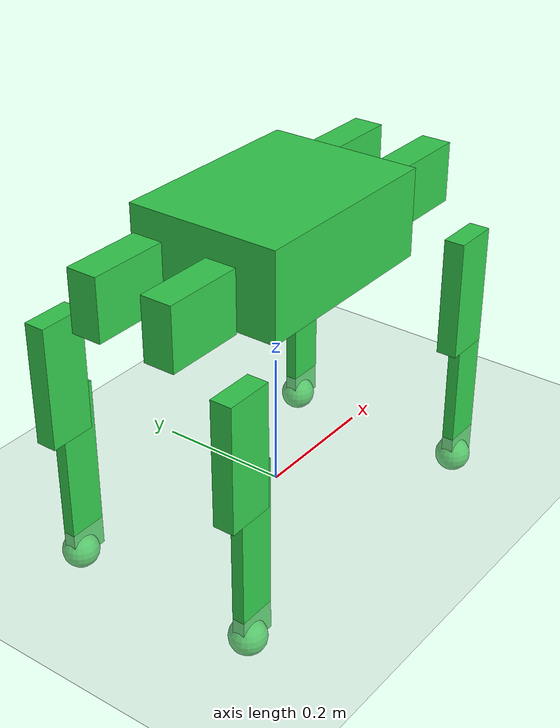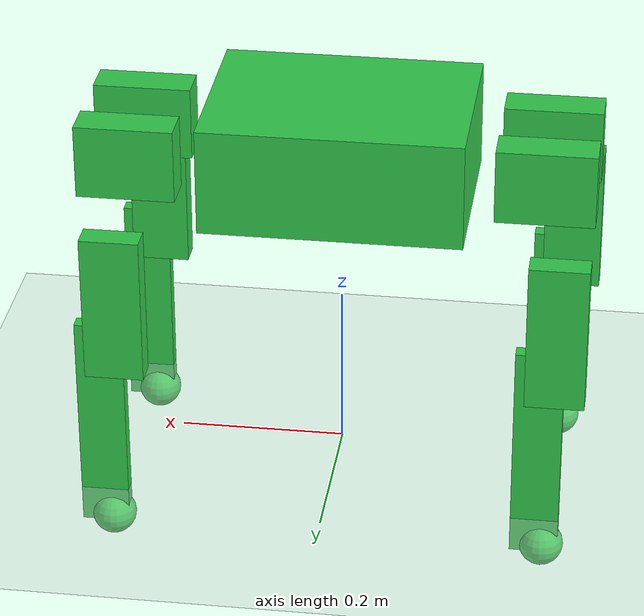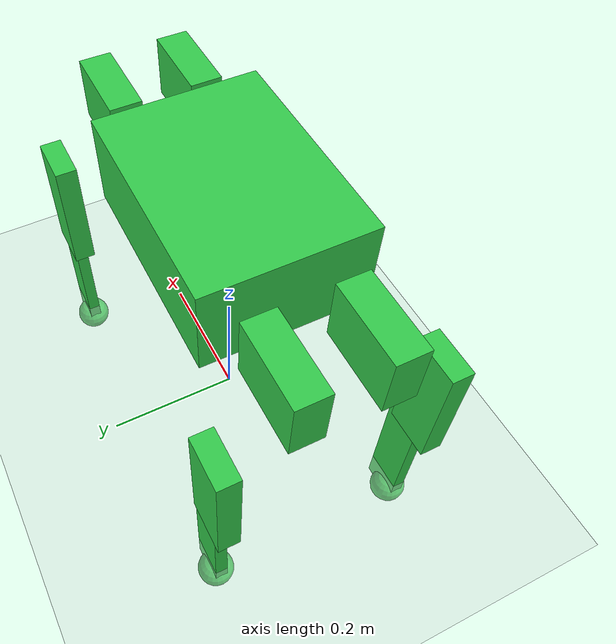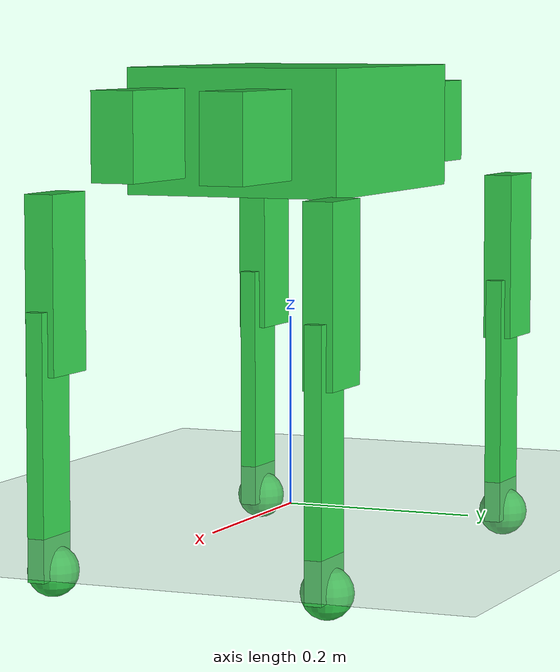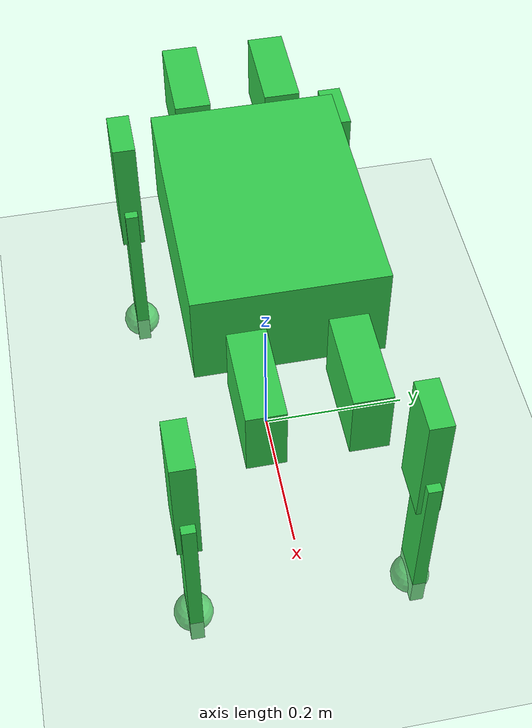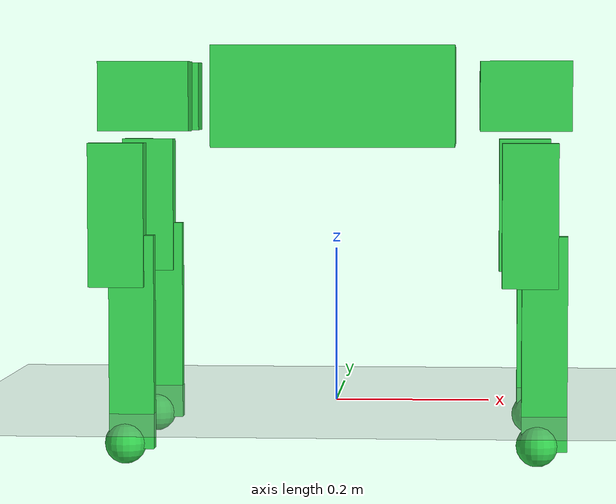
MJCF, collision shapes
<mujoco model="rs02_quadruped">
  <compiler angle="radian" meshdir="C:/fusion 360/outputs/URDF/rs02_quadruped/meshes" />

  <asset>
    <mesh name="base" content_type="model/stl" file="base.stl" />
    <mesh name="FR_hip" content_type="model/stl" file="FR_hip.stl" />
    <mesh name="FR_thigh" content_type="model/stl" file="FR_thigh.stl" />
    <mesh name="FR_calf" content_type="model/stl" file="FR_calf.stl" />
    <mesh name="FL_hip" content_type="model/stl" file="FL_hip.stl" />
    <mesh name="FL_thigh" content_type="model/stl" file="FL_thigh.stl" />
    <mesh name="FL_calf" content_type="model/stl" file="FL_calf.stl" />
    <mesh name="RR_hip" content_type="model/stl" file="RR_hip.stl" />
    <mesh name="RR_thigh" content_type="model/stl" file="RR_thigh.stl" />
    <mesh name="RR_calf" content_type="model/stl" file="RR_calf.stl" />
    <mesh name="RL_hip" content_type="model/stl" file="RL_hip.stl" />
    <mesh name="RL_thigh" content_type="model/stl" file="RL_thigh.stl" />
    <mesh name="RL_calf" content_type="model/stl" file="RL_calf.stl" />
  <texture name="grid" type="2d" builtin="checker" rgb1="0.86 0.89 0.88" rgb2="0.76 0.80 0.79" width="512" height="512" /><material name="floor" texture="grid" texrepeat="8 8" reflectance="0.05" /></asset>

  <worldbody>
    <geom name="floor" type="plane" size="3 3 0.1" material="floor" friction="1.0 0.005 0.0001" /><body name="base" pos="0 0 0.40">
      <freejoint name="root" /><inertial pos="-4.26417e-08 0 -0.00309981" quat="0 0.707107 0 0.707107" mass="4.29374" diaginertia="0.117866 0.101054 0.0278272" />
      <geom type="mesh" contype="0" conaffinity="0" group="1" density="0" mesh="base" rgba="0.62 0.66 0.67 1" />
      <geom size="0.1555 0.115 0.065" type="box" group="3" rgba="0.2 0.8 0.3 0.25" />
      <body name="payload" pos="0 0 -0.023">
        <inertial pos="0 0 0" quat="0 0.707107 0 0.707107" mass="5" diaginertia="0.0260417 0.0193333 0.0120417" />
      </body>
      <body name="FR_hip" pos="0.26 -0.06 0">
        <inertial pos="-0.00737029 0.000700676 -0.000147577" quat="0.496798 0.502384 0.499053 0.501745" mass="0.576874" diaginertia="0.00067433 0.000524457 0.00031506" />
        <joint name="FR_hip_joint" range="-2.37365 0.80285" actuatorfrcrange="-17 17" axis="1 0 0" armature="0.012" damping="0.05" frictionloss="0.02" />
        <geom type="mesh" contype="0" conaffinity="0" group="1" density="0" mesh="FR_hip" rgba="0.11 0.42 0.52 1" />
        <geom size="0.05875 0.0227 0.0449913" pos="-0.01375 0.002175 0" type="box" group="3" rgba="0.2 0.8 0.3 0.25" />
        <body name="FR_thigh" pos="0 -0.0890776 0">
          <inertial pos="-0.0028406 0.0214451 -0.0388643" quat="0.73002 -0.0385003 0.0795103 0.677693" mass="1.06602" diaginertia="0.0063945 0.00625216 0.000982554" />
          <joint name="FR_thigh_joint" range="-2.61799 2.61799" actuatorfrcrange="-17 17" axis="0 1 0" armature="0.012" damping="0.05" frictionloss="0.02" />
          <geom type="mesh" contype="0" conaffinity="0" group="1" density="0" mesh="FR_thigh" rgba="0.45 0.50 0.53 1" />
          <geom size="0.035123 0.0155025 0.0907495" pos="-0.00987707 6.23089e-08 -0.14925" type="box" group="3" rgba="0.2 0.8 0.3 0.25" />
          <body name="FR_calf" pos="0 0 -0.22">
            <inertial pos="0.00317169 5.23573e-06 -0.104711" quat="0.706927 0.0107392 0.0107464 0.707123" mass="0.268721" diaginertia="0.00263787 0.0026185 4.71969e-05" />
            <joint name="FR_calf_joint" range="-2.397 -0.87856" actuatorfrcrange="-25.2 25.2" axis="0 1 0" armature="0.012" damping="0.05" frictionloss="0.02" />
            <geom type="mesh" contype="0" conaffinity="0" group="1" density="0" mesh="FR_calf" rgba="0.76 0.35 0.15 1" />
            <geom size="0.0285982 0.009 0.135204" pos="0.00859943 -2.44013e-06 -0.0899973" type="box" group="3" rgba="0.2 0.8 0.3 0.25" />
            <body name="FR_foot" pos="0 0 -0.21839">
              <inertial pos="0 0 0" mass="0.0001" diaginertia="1e-09 1e-09 1e-09" />
              <geom size="0.02661" group="3" rgba="0.2 0.8 0.3 0.25" />
            <site name="FR_site" type="sphere" size="0.030610000000000002" rgba="0 0 0 0" /></body>
          </body>
        </body>
      </body>
      <body name="FL_hip" pos="0.26 0.06 0">
        <inertial pos="-0.00737025 -0.000700699 -0.000147573" quat="0.501745 0.499053 0.502384 0.496798" mass="0.576871" diaginertia="0.000674325 0.000524453 0.000315058" />
        <joint name="FL_hip_joint" range="-0.80285 2.37365" actuatorfrcrange="-17 17" axis="1 0 0" armature="0.012" damping="0.05" frictionloss="0.02" />
        <geom type="mesh" contype="0" conaffinity="0" group="1" density="0" mesh="FL_hip" rgba="0.11 0.42 0.52 1" />
        <geom size="0.05875 0.0227 0.0449913" pos="-0.01375 -0.002175 0" type="box" group="3" rgba="0.2 0.8 0.3 0.25" />
        <body name="FL_thigh" pos="0 0.0890789 0">
          <inertial pos="-0.00284061 -0.0214464 -0.0388644" quat="0.677692 0.0795101 -0.0385003 0.73002" mass="1.06602" diaginertia="0.0063945 0.00625216 0.000982555" />
          <joint name="FL_thigh_joint" range="-2.61799 2.61799" actuatorfrcrange="-17 17" axis="0 1 0" armature="0.012" damping="0.05" frictionloss="0.02" />
          <geom type="mesh" contype="0" conaffinity="0" group="1" density="0" mesh="FL_thigh" rgba="0.45 0.50 0.53 1" />
          <geom size="0.035123 0.0155025 0.0907495" pos="-0.00987707 -1.38906e-06 -0.14925" type="box" group="3" rgba="0.2 0.8 0.3 0.25" />
          <body name="FL_calf" pos="0 0 -0.22">
            <inertial pos="0.0031715 -6.63975e-06 -0.104711" quat="0.707107 0.0107471 0.0107401 0.706943" mass="0.268727" diaginertia="0.00263792 0.00261855 4.71979e-05" />
            <joint name="FL_calf_joint" range="-2.397 -0.87856" actuatorfrcrange="-25.2 25.2" axis="0 1 0" armature="0.012" damping="0.05" frictionloss="0.02" />
            <geom type="mesh" contype="0" conaffinity="0" group="1" density="0" mesh="FL_calf" rgba="0.76 0.35 0.15 1" />
            <geom size="0.0285982 0.009 0.135204" pos="0.00859946 1.11338e-06 -0.0899973" type="box" group="3" rgba="0.2 0.8 0.3 0.25" />
            <body name="FL_foot" pos="0 0 -0.21839">
              <inertial pos="0 0 0" mass="0.0001" diaginertia="1e-09 1e-09 1e-09" />
              <geom size="0.02661" group="3" rgba="0.2 0.8 0.3 0.25" />
            <site name="FL_site" type="sphere" size="0.030610000000000002" rgba="0 0 0 0" /></body>
          </body>
        </body>
      </body>
      <body name="RR_hip" pos="-0.26 -0.06 0">
        <inertial pos="0.00737041 0.000700676 -0.000147575" quat="0.499093 0.501738 0.496759 0.50239" mass="0.576874" diaginertia="0.000674329 0.000524457 0.00031506" />
        <joint name="RR_hip_joint" range="-2.37365 0.80285" actuatorfrcrange="-17 17" axis="1 0 0" armature="0.012" damping="0.05" frictionloss="0.02" />
        <geom type="mesh" contype="0" conaffinity="0" group="1" density="0" mesh="RR_hip" rgba="0.11 0.42 0.52 1" />
        <geom size="0.05875 0.0227 0.0449913" pos="0.01375 0.002175 0" type="box" group="3" rgba="0.2 0.8 0.3 0.25" />
        <body name="RR_thigh" pos="0 -0.0890776 0">
          <inertial pos="-0.0028406 0.0214451 -0.0388643" quat="0.73002 -0.0385004 0.0795102 0.677692" mass="1.06602" diaginertia="0.0063945 0.00625216 0.000982554" />
          <joint name="RR_thigh_joint" range="-2.61799 2.61799" actuatorfrcrange="-17 17" axis="0 1 0" armature="0.012" damping="0.05" frictionloss="0.02" />
          <geom type="mesh" contype="0" conaffinity="0" group="1" density="0" mesh="RR_thigh" rgba="0.45 0.50 0.53 1" />
          <geom size="0.0351229 0.0155025 0.0907495" pos="-0.00987706 6.22776e-08 -0.14925" type="box" group="3" rgba="0.2 0.8 0.3 0.25" />
          <body name="RR_calf" pos="0 0 -0.22">
            <inertial pos="0.00317169 5.23558e-06 -0.104711" quat="0.706927 0.0107392 0.0107464 0.707123" mass="0.268721" diaginertia="0.00263787 0.0026185 4.71969e-05" />
            <joint name="RR_calf_joint" range="-2.397 -0.87856" actuatorfrcrange="-25.2 25.2" axis="0 1 0" armature="0.012" damping="0.05" frictionloss="0.02" />
            <geom type="mesh" contype="0" conaffinity="0" group="1" density="0" mesh="RR_calf" rgba="0.76 0.35 0.15 1" />
            <geom size="0.0285982 0.009 0.135204" pos="0.00859943 -2.44016e-06 -0.0899973" type="box" group="3" rgba="0.2 0.8 0.3 0.25" />
            <body name="RR_foot" pos="0 0 -0.21839">
              <inertial pos="0 0 0" mass="0.0001" diaginertia="1e-09 1e-09 1e-09" />
              <geom size="0.02661" group="3" rgba="0.2 0.8 0.3 0.25" />
            <site name="RR_site" type="sphere" size="0.030610000000000002" rgba="0 0 0 0" /></body>
          </body>
        </body>
      </body>
      <body name="RL_hip" pos="-0.26 0.06 0">
        <inertial pos="0.00737037 -0.000700698 -0.000147575" quat="0.50239 0.496758 0.501738 0.499093" mass="0.576871" diaginertia="0.000674324 0.000524453 0.000315058" />
        <joint name="RL_hip_joint" range="-0.80285 2.37365" actuatorfrcrange="-17 17" axis="1 0 0" armature="0.012" damping="0.05" frictionloss="0.02" />
        <geom type="mesh" contype="0" conaffinity="0" group="1" density="0" mesh="RL_hip" rgba="0.11 0.42 0.52 1" />
        <geom size="0.05875 0.0227 0.0449913" pos="0.01375 -0.002175 0" type="box" group="3" rgba="0.2 0.8 0.3 0.25" />
        <body name="RL_thigh" pos="0 0.0890789 0">
          <inertial pos="-0.0028406 -0.0214464 -0.0388644" quat="0.677692 0.0795101 -0.0385004 0.73002" mass="1.06602" diaginertia="0.0063945 0.00625216 0.000982555" />
          <joint name="RL_thigh_joint" range="-2.61799 2.61799" actuatorfrcrange="-17 17" axis="0 1 0" armature="0.012" damping="0.05" frictionloss="0.02" />
          <geom type="mesh" contype="0" conaffinity="0" group="1" density="0" mesh="RL_thigh" rgba="0.45 0.50 0.53 1" />
          <geom size="0.0351229 0.0155025 0.0907495" pos="-0.00987706 -1.38905e-06 -0.14925" type="box" group="3" rgba="0.2 0.8 0.3 0.25" />
          <body name="RL_calf" pos="0 0 -0.22">
            <inertial pos="0.00317149 -6.63961e-06 -0.104711" quat="0.707107 0.0107471 0.0107401 0.706943" mass="0.268727" diaginertia="0.00263792 0.00261855 4.71979e-05" />
            <joint name="RL_calf_joint" range="-2.397 -0.87856" actuatorfrcrange="-25.2 25.2" axis="0 1 0" armature="0.012" damping="0.05" frictionloss="0.02" />
            <geom type="mesh" contype="0" conaffinity="0" group="1" density="0" mesh="RL_calf" rgba="0.76 0.35 0.15 1" />
            <geom size="0.0285982 0.009 0.135204" pos="0.00859946 1.11339e-06 -0.0899973" type="box" group="3" rgba="0.2 0.8 0.3 0.25" />
            <body name="RL_foot" pos="0 0 -0.21839">
              <inertial pos="0 0 0" mass="0.0001" diaginertia="1e-09 1e-09 1e-09" />
              <geom size="0.02661" group="3" rgba="0.2 0.8 0.3 0.25" />
            <site name="RL_site" type="sphere" size="0.030610000000000002" rgba="0 0 0 0" /></body>
          </body>
        </body>
      </body>
    </body>
  <light pos="0.5 -1 2.5" dir="-0.2 0.4 -1" diffuse="0.7 0.7 0.7" /></worldbody>
<option timestep="0.001" integrator="implicitfast" /><visual><headlight ambient="0.35 0.35 0.35" diffuse="0.6 0.6 0.6" specular="0.1 0.1 0.1" /><global offwidth="1920" offheight="1080" /></visual><actuator><position name="FR_hip_joint_act" joint="FR_hip_joint" kp="150.0" kv="3.0" forcelimited="true" forcerange="-17.0 17.0" /><position name="FR_thigh_joint_act" joint="FR_thigh_joint" kp="150.0" kv="3.0" forcelimited="true" forcerange="-17.0 17.0" /><position name="FR_calf_joint_act" joint="FR_calf_joint" kp="150.0" kv="3.0" forcelimited="true" forcerange="-25.2 25.2" /><position name="FL_hip_joint_act" joint="FL_hip_joint" kp="150.0" kv="3.0" forcelimited="true" forcerange="-17.0 17.0" /><position name="FL_thigh_joint_act" joint="FL_thigh_joint" kp="150.0" kv="3.0" forcelimited="true" forcerange="-17.0 17.0" /><position name="FL_calf_joint_act" joint="FL_calf_joint" kp="150.0" kv="3.0" forcelimited="true" forcerange="-25.2 25.2" /><position name="RR_hip_joint_act" joint="RR_hip_joint" kp="150.0" kv="3.0" forcelimited="true" forcerange="-17.0 17.0" /><position name="RR_thigh_joint_act" joint="RR_thigh_joint" kp="150.0" kv="3.0" forcelimited="true" forcerange="-17.0 17.0" /><position name="RR_calf_joint_act" joint="RR_calf_joint" kp="150.0" kv="3.0" forcelimited="true" forcerange="-25.2 25.2" /><position name="RL_hip_joint_act" joint="RL_hip_joint" kp="150.0" kv="3.0" forcelimited="true" forcerange="-17.0 17.0" /><position name="RL_thigh_joint_act" joint="RL_thigh_joint" kp="150.0" kv="3.0" forcelimited="true" forcerange="-17.0 17.0" /><position name="RL_calf_joint_act" joint="RL_calf_joint" kp="150.0" kv="3.0" forcelimited="true" forcerange="-25.2 25.2" /></actuator><sensor><touch name="FR_touch" site="FR_site" /><touch name="FL_touch" site="FL_site" /><touch name="RR_touch" site="RR_site" /><touch name="RL_touch" site="RL_site" /></sensor></mujoco>
